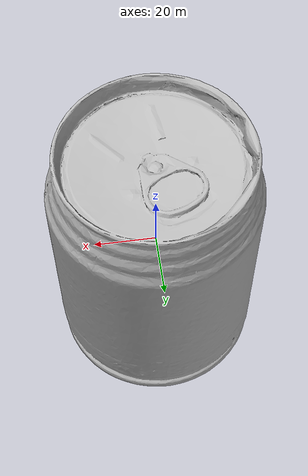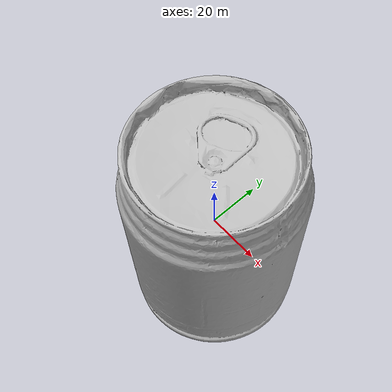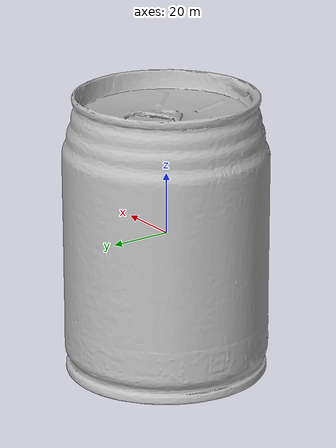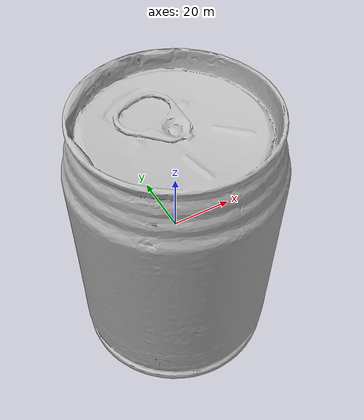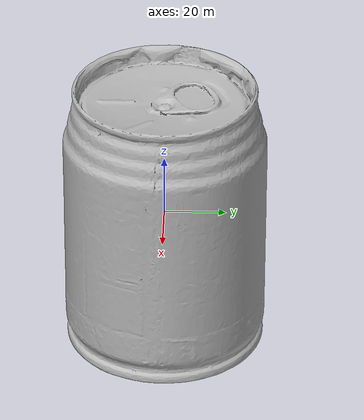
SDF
<sdf version="1.4">
 <world name="default">
  <light name="light1" type="point">
   <pose>0 0 1 0 0 0</pose>
   <diffuse>3 3 3 1</diffuse>
   <specular>3 3 3 1</specular>
  </light>
  <light name="light2" type="point">
   <pose>0 0.5 2 0 0 0</pose>
   <diffuse>1 1 1 1</diffuse>
   <specular>1 1 1 1</specular>
  </light>
  <light name="light3" type="point">
   <pose>0 0.5 2 0 0 0</pose>
   <diffuse>3 3 3 1</diffuse>
   <specular>3 3 3 1</specular>
  </light>
  <scene><ambient>0.7 0.7 0.7</ambient></scene>
  <model name="box2">
   <link name="link_box2">
    <collision name="default">
     <geometry>
      <mesh><uri>model://wooden_puzzle2/collision_meshes/collision.obj</uri><scale>1.0 1.0 1.0</scale></mesh>
     </geometry>
     <surface>
      <friction><ode><mu>0.5</mu><mu2>0.5</mu2></ode></friction>
      <contact><ode><max_vel>0</max_vel><min_depth>0.0001</min_depth><kp>1e8</kp></ode></contact>
     </surface>
    </collision>
    <visual name="default">
     <geometry>
      <mesh><uri>model://wooden_puzzle2/visual_meshes/visual.dae</uri><scale>1.0 1.0 1.0</scale></mesh>
     </geometry>
    </visual>
    <inertial>
     <mass>0.03464552015066147</mass>
     <pose>2.7402536943554878e-05 4.997663199901581e-05 6.587122334167361e-05 -0.1920274284601778 0.6112817660648215 -0.6338676817937987</pose>
     <inertia>
      <ixx>6.440233e-06</ixx>
      <iyy>6.6177017e-06</iyy>
      <izz>6.52356e-06</izz>
      <ixy>0</ixy>
      <ixz>0</ixz>
      <iyz>0</iyz>
     </inertia>
    </inertial>
   </link>
   <pose>0.025968296453356743 0.2722247838973999 0.01691773533821106 0.020847786715800648 0.0007218846425040753 3.014179780451571</pose>
  </model>
  <model name="box3">
   <link name="link_box3">
    <collision name="default">
     <geometry>
      <mesh><uri>model://wooden_puzzle1/collision_meshes/collision.obj</uri><scale>1.0 1.0 1.0</scale></mesh>
     </geometry>
     <surface>
      <friction><ode><mu>0.5</mu><mu2>0.5</mu2></ode></friction>
      <contact><ode><max_vel>0</max_vel><min_depth>0.0001</min_depth><kp>1e8</kp></ode></contact>
     </surface>
    </collision>
    <visual name="default">
     <geometry>
      <mesh><uri>model://wooden_puzzle1/visual_meshes/visual.dae</uri><scale>1.0 1.0 1.0</scale></mesh>
     </geometry>
    </visual>
    <inertial>
     <mass>0.03424873203039169</mass>
     <pose>-0.0001735068071866408 7.97226166469045e-05 -9.191554272547364e-05 -0.07784599296854997 -0.2636133645981781 -0.5528677830585703</pose>
     <inertia>
      <ixx>6.4618e-06</ixx>
      <iyy>6.3374077e-06</iyy>
      <izz>6.413012e-06</izz>
      <ixy>0</ixy>
      <ixz>0</ixz>
      <iyz>0</iyz>
     </inertia>
    </inertial>
   </link>
   <pose>0.1844710409641266 0.16602009534835815 0.016801945865154266 0.010517010693903315 -0.00945958441887167 -2.5569948522327004</pose>
  </model>
  <model name="can1">
   <link name="link_can1">
    <collision name="default">
     <geometry>
      <mesh><uri>model://pepsi/collision_meshes/collision.obj</uri><scale>1.0 1.0 1.0</scale></mesh>
     </geometry>
     <surface>
      <friction><ode><mu>0.5</mu><mu2>0.5</mu2></ode></friction>
      <contact><ode><max_vel>0</max_vel><min_depth>0.0001</min_depth><kp>1e8</kp></ode></contact>
     </surface>
    </collision>
    <visual name="default">
     <geometry><mesh><uri>model://pepsi/visual_meshes/visual.dae</uri><scale>1.0 1.0 1.0</scale></mesh></geometry>
    </visual>
    <inertial>
     <mass>0.3250696361064911</mass>
     <pose>-7.5590331107378e-05 2.99312814604491e-05 -0.0003384356386959553 -0.0010678660158137958 -0.0021735266966629516 0.5674177426725915</pose>
     <inertia>
      <ixx>0.0006476009</ixx>
      <iyy>0.0006471292</iyy>
      <izz>0.00013783273</izz>
      <ixy>0</ixy>
      <ixz>0</ixz>
      <iyz>0</iyz>
     </inertia>
    </inertial>
   </link>
   <pose>0.03654484823346138 -0.07796897739171982 0.07449629157781601 -1.7012082068856843e-05 2.7290222100028155e-06 -2.3532610625121055</pose>
  </model>
  <model name="can2">
   <link name="link_can2">
    <collision name="default">
     <geometry>
      <mesh><uri>model://redbull/collision_meshes/collision.obj</uri><scale>1.0 1.0 1.0</scale></mesh>
     </geometry>
     <surface>
      <friction><ode><mu>0.5</mu><mu2>0.5</mu2></ode></friction>
      <contact><ode><max_vel>0</max_vel><min_depth>0.0001</min_depth><kp>1e8</kp></ode></contact>
     </surface>
    </collision>
    <visual name="default">
     <geometry>
      <mesh><uri>model://redbull/visual_meshes/visual.dae</uri><scale>1.0 1.0 1.0</scale></mesh>
     </geometry>
    </visual>
    <inertial>
     <mass>0.28235653042793274</mass>
     <pose>-2.2127058400656097e-05 -0.00012659600179176778 -0.0006860987632535398 0.0011377565977294822 -0.010800863454111471 0.5858141898730843</pose>
     <inertia>
      <ixx>0.0002654759</ixx>
      <iyy>0.0002657</iyy>
      <izz>0.00015754026</izz>
      <ixy>0</ixy>
      <ixz>0</ixz>
      <iyz>0</iyz>
     </inertia>
    </inertial>
   </link>
   <pose>0.08866874128580093 -0.04293878376483917 0.04638562351465225 -0.01049003264932327 0.007260106282244942 -2.2883007839366023</pose>
  </model>
  <physics type="ode">
   <max_contacts>50</max_contacts>
   <ode>
    <solver><type>quick</type><iters>75</iters></solver>
    <constraints>
     <contact_max_correcting_vel>0</contact_max_correcting_vel>
     <contact_surface_layer>0</contact_surface_layer>
    </constraints>
   </ode>
  </physics>
 </world>
</sdf>
